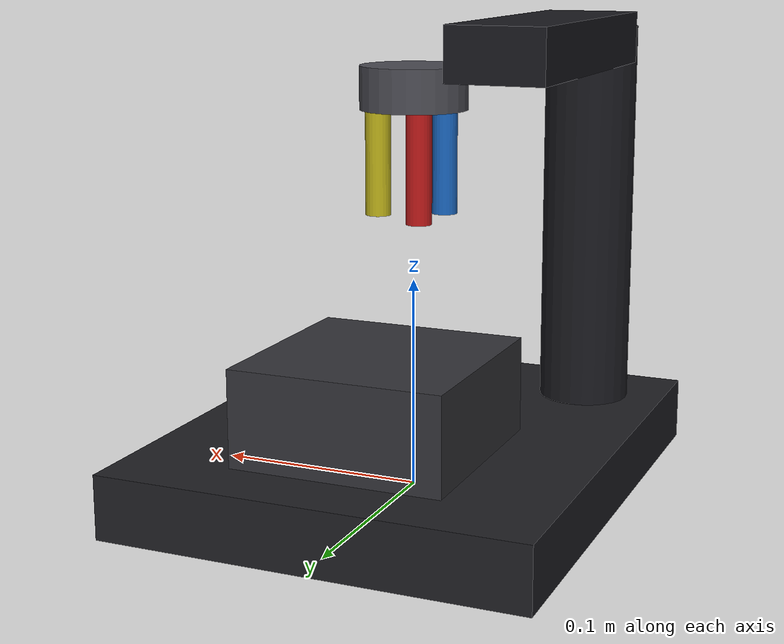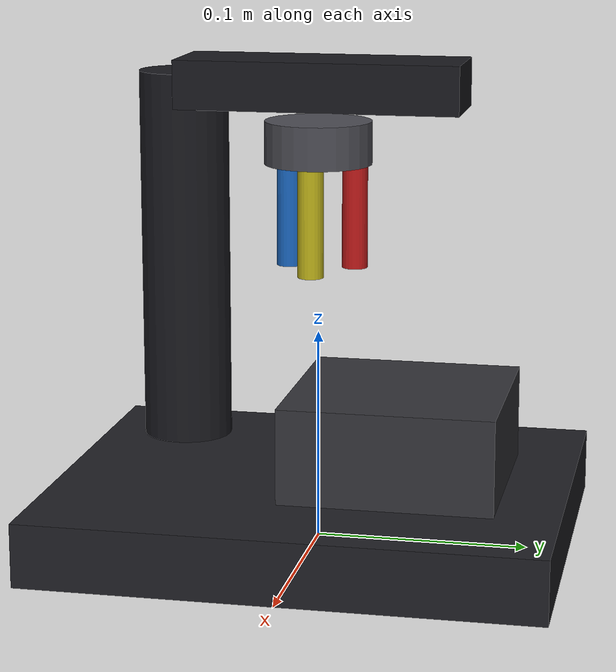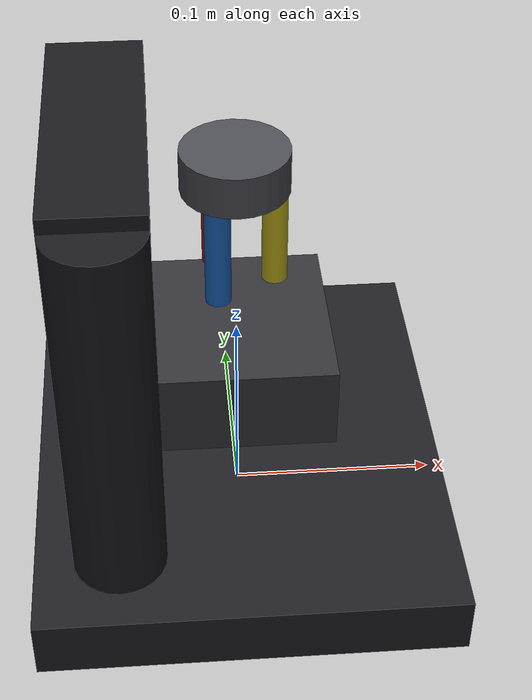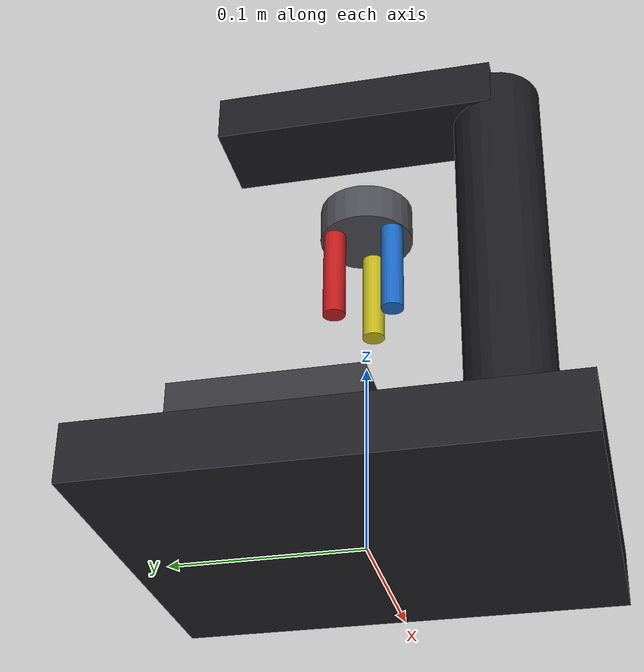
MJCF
<?xml version="1.0" encoding="utf-8"?>
<mujoco model="real_lab_aarhus_university_spinning_disk">
  <compiler angle="radian" autolimits="true"/>
  <default>
    <default class="body"><geom contype="1" conaffinity="1"/></default>
  </default>
  <worldbody>
    <body name="base">
      <geom type="box" size="0.1 0.12 0.015" pos="0 0 0.015" rgba="0.12 0.12 0.14 1" class="body"/>
      <geom type="cylinder" size="0.022 0.1" pos="-0.06 -0.08 0.115" rgba="0.1 0.1 0.12 1" class="body"/>
      <geom type="box" size="0.022 0.07 0.012" pos="-0.06 -0.01 0.21" rgba="0.1 0.1 0.12 1" class="body"/>
      <geom type="box" size="0.05 0.05 0.03" pos="0.0 0.04 0.045" rgba="0.2 0.2 0.22 1" class="body"/>
      <body name="objective_turret" pos="0.0 0.0 0.19">
        <joint name="objective_turret_joint" type="hinge" axis="0 0 1" range="0 6.28" damping="0.5" frictionloss="0.2"/>
  <geom type="cylinder" size="0.025 0.01" pos="0 0 0" rgba="0.3 0.3 0.33 1" class="body"/>
  <geom type="cylinder" size="0.006 0.03" pos="0.018 0.0 -0.03" rgba="0.75 0.7 0.1 1" class="body"/>
  <geom type="cylinder" size="0.006 0.03" pos="-0.009 0.0156 -0.03" rgba="0.75 0.1 0.1 1" class="body"/>
  <geom type="cylinder" size="0.006 0.03" pos="-0.009 -0.0156 -0.03" rgba="0.1 0.4 0.75 1" class="body"/>
      </body>
    </body>
  </worldbody>
</mujoco>
